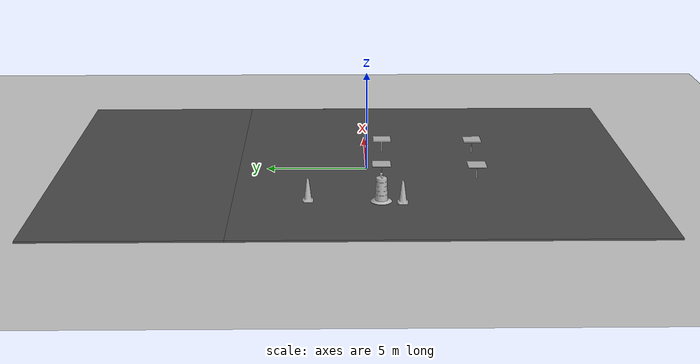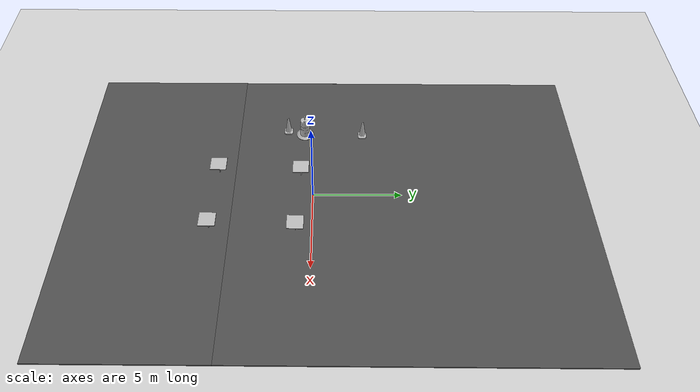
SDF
<sdf version="1.7">
 <world name="default">
  <light name="sun" type="directional">
   <pose>0 0 10 0 -0 0</pose>
   <diffuse>0.8 0.8 0.8 1</diffuse>
   <specular>0.2 0.2 0.2 1</specular>
   <attenuation>
    <range>1000</range>
    <constant>0.9</constant>
    <linear>0.01</linear>
    <quadratic>0.001</quadratic>
   </attenuation>
   <direction>-0.5 0.1 -0.9</direction>
   <spot><inner_angle>0</inner_angle><outer_angle>0</outer_angle><falloff>0</falloff></spot>
  </light>
  <model name="ground_plane">
   <static>1</static>
   <link name="link">
    <collision name="collision">
     <geometry><plane><normal>0 0 1</normal><size>100 100</size></plane></geometry>
     <surface><friction><ode><mu>100</mu><mu2>50</mu2></ode></friction></surface>
    </collision>
    <visual name="visual">
     <cast_shadows>0</cast_shadows>
     <geometry><plane><normal>0 0 1</normal><size>100 100</size></plane></geometry>
     <material>
      <script><uri>file://media/materials/scripts/gazebo.material</uri><name>Gazebo/Grey</name></script>
     </material>
    </visual>
   </link>
  </model>
  <gravity>0 0 -9.8</gravity>
  <magnetic_field>6e-06 2.3e-05 -4.2e-05</magnetic_field>
  <atmosphere type="adiabatic"/>
  <physics type="ode">
   <max_step_size>0.001</max_step_size>
   <real_time_factor>1</real_time_factor>
   <real_time_update_rate>1000</real_time_update_rate>
  </physics>
  <scene><ambient>0.4 0.4 0.4 1</ambient><background>0.7 0.7 0.7 1</background><shadows>1</shadows></scene>
  <audio><device>default</device></audio>
  <spherical_coordinates>
   <surface_model>EARTH_WGS84</surface_model>
   <latitude_deg>0</latitude_deg>
   <longitude_deg>0</longitude_deg>
   <elevation>0</elevation>
   <heading_deg>0</heading_deg>
  </spherical_coordinates>
  <model name="Construction Cone_1_clone_9">
   <link name="link">
    <collision name="collision">
     <geometry>
      <mesh><scale>10 10 10</scale><uri>model://construction_cone/meshes/construction_cone.dae</uri></mesh>
     </geometry>
    </collision>
    <visual name="visual">
     <geometry>
      <mesh><scale>10 10 10</scale><uri>model://construction_cone/meshes/construction_cone.dae</uri></mesh>
     </geometry>
    </visual>
    <inertial>
     <inertia><ixx>1</ixx><ixy>0</ixy><ixz>0</ixz><iyy>1</iyy><iyz>0</iyz><izz>1</izz></inertia>
     <mass>1</mass>
    </inertial>
   </link>
   <pose>-5.00363 -1.57518 0.049992 0 -5e-06 -0.008543</pose>
  </model>
  <model name="Construction Cone_1_clone_10">
   <link name="link">
    <collision name="collision">
     <geometry>
      <mesh><scale>10 10 10</scale><uri>model://construction_cone/meshes/construction_cone.dae</uri></mesh>
     </geometry>
    </collision>
    <visual name="visual">
     <geometry>
      <mesh><scale>10 10 10</scale><uri>model://construction_cone/meshes/construction_cone.dae</uri></mesh>
     </geometry>
    </visual>
    <inertial>
     <inertia><ixx>1</ixx><ixy>0</ixy><ixz>0</ixz><iyy>1</iyy><iyz>0</iyz><izz>1</izz></inertia>
     <mass>1</mass>
    </inertial>
   </link>
   <pose>-4.68065 2.87319 0.04999 -2e-06 0 0</pose>
  </model>
  <model name="Construction Barrel_clone">
   <link name="link">
    <inertial>
     <pose>0 0 0.4 0 -0 0</pose>
     <mass>500</mass>
     <inertia><ixx>51.2096</ixx><iyy>51.2096</iyy><izz>25</izz><ixy>0</ixy><ixz>0</ixz><iyz>0</iyz></inertia>
    </inertial>
    <collision name="collision">
     <geometry><mesh><uri>model://construction_barrel/meshes/construction_barrel.dae</uri></mesh></geometry>
    </collision>
    <visual name="visual">
     <geometry><mesh><uri>model://construction_barrel/meshes/construction_barrel.dae</uri></mesh></geometry>
    </visual>
   </link>
   <pose>-4.77679 -0.582139 0.049999 -2e-06 -4e-06 0.056456</pose>
  </model>
  <model name="cafe_table">
   <static>1</static>
   <link name="link">
    <collision name="surface">
     <pose>0 0 0.755 0 -0 0</pose>
     <geometry><box><size>0.913 0.913 0.04</size></box></geometry>
    </collision>
    <collision name="column">
     <pose>0 0 0.37 0 -0 0</pose>
     <geometry><box><size>0.042 0.042 0.74</size></box></geometry>
    </collision>
    <collision name="base">
     <pose>0 0 0.02 0 -0 0</pose>
     <geometry><box><size>0.56 0.56 0.04</size></box></geometry>
    </collision>
    <visual name="visual">
     <geometry><mesh><uri>model://cafe_table/meshes/cafe_table.dae</uri></mesh></geometry>
    </visual>
   </link>
   <pose>-1.63948 -5.41809 0 0 -0 0</pose>
  </model>
  <model name="cafe_table_clone">
   <static>1</static>
   <link name="link">
    <collision name="surface">
     <pose>0 0 0.755 0 -0 0</pose>
     <geometry><box><size>0.913 0.913 0.04</size></box></geometry>
    </collision>
    <collision name="column">
     <pose>0 0 0.37 0 -0 0</pose>
     <geometry><box><size>0.042 0.042 0.74</size></box></geometry>
    </collision>
    <collision name="base">
     <pose>0 0 0.02 0 -0 0</pose>
     <geometry><box><size>0.56 0.56 0.04</size></box></geometry>
    </collision>
    <visual name="visual">
     <geometry><mesh><uri>model://cafe_table/meshes/cafe_table.dae</uri></mesh></geometry>
    </visual>
   </link>
   <pose>2.41391 -5.60008 0 0 -0 0</pose>
  </model>
  <model name="cafe_table_clone_0">
   <static>1</static>
   <link name="link">
    <collision name="surface">
     <pose>0 0 0.755 0 -0 0</pose>
     <geometry><box><size>0.913 0.913 0.04</size></box></geometry>
    </collision>
    <collision name="column">
     <pose>0 0 0.37 0 -0 0</pose>
     <geometry><box><size>0.042 0.042 0.74</size></box></geometry>
    </collision>
    <collision name="base">
     <pose>0 0 0.02 0 -0 0</pose>
     <geometry><box><size>0.56 0.56 0.04</size></box></geometry>
    </collision>
    <visual name="visual">
     <geometry><mesh><uri>model://cafe_table/meshes/cafe_table.dae</uri></mesh></geometry>
    </visual>
   </link>
   <pose>-1.45543 -0.709619 0 0 -0 0</pose>
  </model>
  <model name="cafe_table_clone_1">
   <static>1</static>
   <link name="link">
    <collision name="surface">
     <pose>0 0 0.755 0 -0 0</pose>
     <geometry><box><size>0.913 0.913 0.04</size></box></geometry>
    </collision>
    <collision name="column">
     <pose>0 0 0.37 0 -0 0</pose>
     <geometry><box><size>0.042 0.042 0.74</size></box></geometry>
    </collision>
    <collision name="base">
     <pose>0 0 0.02 0 -0 0</pose>
     <geometry><box><size>0.56 0.56 0.04</size></box></geometry>
    </collision>
    <visual name="visual">
     <geometry><mesh><uri>model://cafe_table/meshes/cafe_table.dae</uri></mesh></geometry>
    </visual>
   </link>
   <pose>2.55099 -0.881957 0 0 -0 0</pose>
  </model>
  <model name="asphalt_plane">
   <static>1</static>
   <link name="link">
    <collision name="collision"><geometry><box><size>20 20 0.1</size></box></geometry></collision>
    <visual name="visual">
     <cast_shadows>0</cast_shadows>
     <geometry><box><size>20 20 0.1</size></box></geometry>
     <material>
      <script>
       <uri>model://asphalt_plane/materials/scripts</uri>
       <uri>model://asphalt_plane/materials/textures</uri>
       <name>vrc/asphalt</name>
      </script>
     </material>
    </visual>
   </link>
   <pose>0.539358 -3.56894 0 0 -0 0</pose>
  </model>
  <model name="asphalt_plane_0">
   <static>1</static>
   <link name="link">
    <collision name="collision"><geometry><box><size>20 20 0.1</size></box></geometry></collision>
    <visual name="visual">
     <cast_shadows>0</cast_shadows>
     <geometry><box><size>20 20 0.1</size></box></geometry>
     <material>
      <script>
       <uri>model://asphalt_plane/materials/scripts</uri>
       <uri>model://asphalt_plane/materials/textures</uri>
       <name>vrc/asphalt</name>
      </script>
     </material>
    </visual>
   </link>
   <pose>0.541539 5.51267 0 0 -0 0</pose>
  </model>
 </world>
</sdf>
